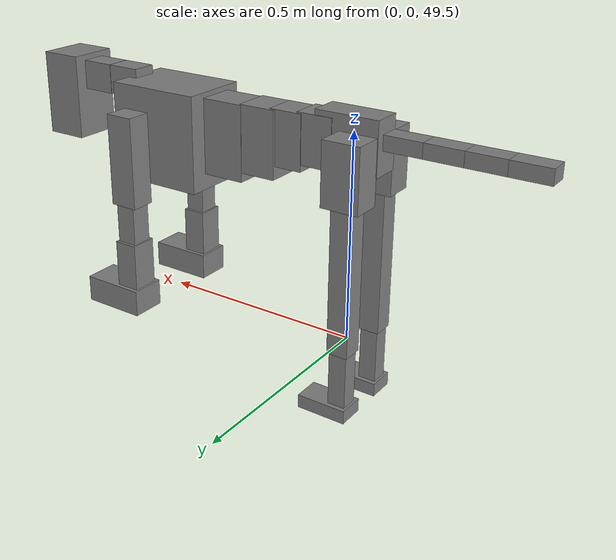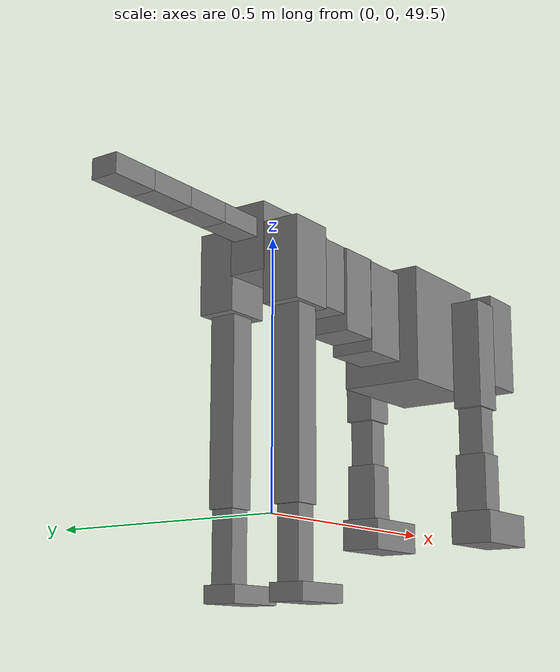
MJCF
<mujoco model="dog">

    <default>
        <joint armature="0.02" stiffness="1" damping="0.2" limited="true"/>
        <geom condim="3" friction="1 0.05 0.05" margin="0.01"/>
        <motor ctrllimited="true" ctrlrange="-1.0 1.0" forcelimited="true" gear="50"/>
    </default>

    <compiler inertiafromgeom="true" angle="radian"/>

    <option timestep="0.016" iterations="50" tolerance="1e-10" solver="Newton" jacobian="dense" cone="pyramidal"/>

    <size nconmax="20000" njmax="60000" nstack="5000000"/>
    <visual>
        <map force="0.1" zfar="30"/>
        <rgba haze="0.15 0.25 0.35 1"/>
        <quality shadowsize="2048"/>
        <global offwidth="800" offheight="800"/>
    </visual>

    <asset>
        <texture type="skybox" builtin="gradient" rgb1="0.3 0.5 0.7" rgb2="0 0 0" width="512" height="512"/>
        <texture name="texplane" type="2d" builtin="checker" rgb1=".2 .3 .4" rgb2=".1 0.15 0.2" width="512" height="512"
                 mark="cross" markrgb=".8 .8 .8"/>
        <texture name="texgeom" type="cube" builtin="flat" mark="cross" width="127" height="1278" rgb1="0.8 0.6 0.4"
                 rgb2="0.8 0.6 0.4" markrgb="1 1 1" random="0.01"/>

        <material name="matplane" reflectance="0.3" texture="texplane" texrepeat="1 1" texuniform="true"/>
        <material name="matgeom" texture="texgeom" texuniform="true" rgba="0.8 0.6 .4 1"/>
    </asset>

    <worldbody>
        <geom name="floor" pos="0 0 0" size="0 0 .25" type="plane" material="matplane" condim="3"/>

        <light directional="false" diffuse=".2 .2 .2" specular="0 0 0" pos="0 0 5" dir="0 0 -1" castshadow="false"/>
        <light mode="targetbodycom" target="torso" directional="false" diffuse=".8 .8 .8" specular="0.3 0.3 0.3"
               pos="0 0 4.0" dir="0 0 -1"/>

        <body name="root" pos="0 0 50">
            <freejoint name="root_1"/>
            <geom type="box" pos="0 0 -0.02" size="0.0774  0.0358  0.063" density="2030"/>

            <body name="spine1" pos="0.054 0 0">
                <joint name="spine1_y" axis="0 1 0" range="0 0.7" limited="true"/>
                <geom type="box" pos="0.02375 0 -0.03" size="0.04375  0.0375  0.05985" density="2030"/>

                <body name="spine2" pos="0.0612 0 0">
                    <joint name="spine2_y" axis="0 1 0" range="-0.15 0.15" limited="true"/>
                    <geom type="box" pos="0.03555  0  -0.04" size="0.04055  0.039  0.06615" density="2030"/>

                    <body name="spine3" pos="0.0730 0 0">
                        <joint name="spine3_y" axis="0 1 0" range="-0.15 0.15" limited="true"/>
                        <geom type="box" pos="0.03555  0  -0.057" size="0.04555  0.0445  0.081" density="2030"/>

                        <body name="spine4" pos="0.0780 0 0">
                            <joint name="spine4_y" axis="0 1 0" range="-0.15 0.15" limited="true"/>
                            <geom type="box" pos="0.05265  0  -0.07" size="0.05265  0.045  0.09135" density="2030"/>

                            <body name="torso" pos="0.1082 0 0">
                                <joint name="torso_y" axis="0 1 0" range="-0.15 0.15" limited="true"/>
                                <geom type="box" pos="0.11925  0  -0.085" size="0.11925  0.085  0.11745"
                                      density="2030"/>

                                <body name="neck1" pos="0.2160  0   0.0180">
                                    <joint name="neck1_y" axis="0 1 0" range="-1.2  -1" limited="true"/>
                                    <geom type="box" pos="0.0423  0  0" size="0.0423  0.03  0.036" density="2325"/>

                                    <body name="neck2" pos="0.0853  0  0">
                                        <joint name="neck2_y" axis="0 1 0" range="0.1  0" limited="true"/>
                                        <geom type="box" pos="0.0423  0  0" size="0.0423  0.03  0.036" density="2325"/>

                                        <body name="head" pos="0.0853  0  0">
                                            <joint name="head_y" axis="0 1 0" range="-0.3  -0.2" limited="true"/>
                                            <geom type="box" pos="0.0531  0  -0.055" size="0.0531  0.06  0.1044"
                                                  density="4030"/>

                                        </body>
                                    </body>
                                </body>

                                <body name="front_shoulder" pos="0.156  0   -0.0480">
                                    <joint name="front_shoulder_y" axis="0 1 0" range="-1 1.5" limited="true"/>
                                    <geom type="box" pos="0 0.13 -0.0849" size="0.0350  0.0299  0.1115" density="1158"/>
                                    <geom type="box" pos="0 -0.13 -0.0849" size="0.0350  0.0299  0.1115"
                                          density="1158"/>

                                    <body name="front_elbow" pos="0  0  -0.1698">
                                        <joint name="front_elbow_y" axis="0 1 0" range="-2 0" limited="true"/>
                                        <geom type="box" pos="0 0.13 -0.0679" size="0.0250  0.0256  0.0679"
                                              density="1081"/>
                                        <geom type="box" pos="0 -0.13 -0.0679" size="0.0250  0.0256  0.0679"
                                              density="1081"/>

                                        <body name="front_wrist" pos="0  0  -0.1357">
                                            <joint name="front_wrist_y" axis="0 1 0" range="-0.2 0" limited="true"/>
                                            <geom type="box" pos="0 0.13 -0.0587" size="0.0294  0.0326  0.0719"
                                                  density="1664"/>
                                            <geom type="box" pos="0 -0.13 -0.0587" size="0.0294  0.0326  0.0719"
                                                  density="1664"/>

                                            <body name="front_finger_end" pos="0  0  -0.1175">
                                                <joint name="front_finger_y" axis="0 1 0" range="-0.4 1"
                                                       limited="true"/>
                                                <geom type="box" pos="0.0428  0.13  -0.0175"
                                                      size="0.0784  0.0428  0.0325" density="1515"/>
                                                <geom type="box" pos="0.0428  -0.13  -0.0175"
                                                      size="0.0784  0.0428  0.0325" density="1515"/>

                                            </body>

                                        </body>
                                    </body>
                                </body>

                            </body>
                        </body>
                    </body>
                </body>
            </body>

            <body name="back_hip" pos="-0.03 0 -0.018">
                <joint name="back_hip_y" axis="0 1 0" range="-1.5 0.3" limited="true"/>
                <geom type="box" pos="0 0.07 -0.0523" size="0.0455  0.0357  0.0751" density="1154"/>
                <geom type="box" pos="0 -0.07 -0.0523" size="0.0455  0.0357  0.0751" density="1154"/>

                <body name="back_knee" pos="0  0  -0.1047">
                    <joint name="back_knee_y" axis="0 1 0" range="0 2.8" limited="true"/>
                    <geom type="box" pos="0 0.07 -0.1772" size="0.0258  0.0255  0.1927" density="1227"/>
                    <geom type="box" pos="0 -0.07 -0.1772" size="0.0258  0.0255  0.1927" density="1227"/>

                    <body name="back_ankle" pos="0  0  -0.3544">
                        <joint name="back_ankle_y" axis="0 1 0" range="-2.2 0" limited="true"/>
                        <geom type="box" pos="0 0.07 -0.0806" size="0.0216  0.0216  0.0919" density="1284"/>
                        <geom type="box" pos="0 -0.07 -0.0806" size="0.0216  0.0216  0.0919" density="1284"/>

                        <body name="back_toe_end" pos="0  0  -0.1612">
                            <joint name="back_toe_y" axis="0 1 0" range="-0.4 1" limited="true"/>
                            <geom type="box" pos="0.0333  0.07  -0.0012" size="0.0611  0.0333  0.0162" density="1515"/>
                            <geom type="box" pos="0.0333  -0.07  -0.0012" size="0.0611  0.0333  0.0162" density="1515"/>

                        </body>
                    </body>
                </body>
            </body>

            <body name="tail1" pos="-0.074 0 -0.006">
                <joint name="tail1_y" axis="0 1 0" range="-0.2 0.2" limited="true"/>
                <geom type="box" pos="-0.0536  0  0" size="0.045  0.025  0.0175" density="1587"/>

                <body name="tail2" pos="-0.09 0 0">
                    <joint name="tail2_y" axis="0 1 0" range="-0.2 0.2" limited="true"/>
                    <geom type="box" pos="-0.0536  0  0" size="0.045  0.025  0.0175" density="1587"/>

                    <body name="tail3" pos="-0.09 0 0">
                        <joint name="tail3_y" axis="0 1 0" range="-0.2 0.2" limited="true"/>
                        <geom type="box" pos="-0.0536  0  0" size="0.045  0.025  0.0175" density="1587"/>

                        <body name="tail4" pos="-0.09 0 0">
                            <joint name="tail4_y" axis="0 1 0" range="-0.2 0.2" limited="true"/>
                            <geom type="box" pos="-0.0536  0  0" size="0.045  0.025  0.0175" density="1587"/>

                        </body>
                    </body>
                </body>
            </body>
        </body>
    </worldbody>

    <actuator>
        <motor joint="spine1_y" forcerange="-150 150     "/>
        <motor joint="spine2_y" forcerange="-150 150     "/>
        <motor joint="spine3_y" forcerange="-150 150     "/>
        <motor joint="spine4_y" forcerange="-150 150     "/>
        <motor joint="torso_y" forcerange="-150 150     "/>
        <motor joint="neck1_y" forcerange="-100 100       "/>
        <motor joint="neck2_y" forcerange="-100 100       "/>
        <motor joint="head_y" forcerange="-150 150       "/>
        <motor joint="front_shoulder_y" forcerange="-189.64 109.79"/>
        <motor joint="front_elbow_y" forcerange="-135.85 150.02"/>
        <motor joint="front_wrist_y" forcerange="-123.53 137.62"/>
        <motor joint="front_finger_y" forcerange="-94.37 93.70"/>
        <motor joint="back_hip_y" forcerange="-366.33 309.33"/>
        <motor joint="back_knee_y" forcerange="-247.54 322.71"/>
        <motor joint="back_angle_y" forcerange="-139.04 106.71"/>
        <motor joint="back_toe_y" forcerange="-61.12 125.29"/>
        <motor joint="tail1_y" forcerange="-50 50     "/>
        <motor joint="tail2_y" forcerange="-50 50     "/>
        <motor joint="tail3_y" forcerange="-50 50     "/>
        <motor joint="tail4_y" forcerange="-50 50     "/>
    </actuator>
</mujoco>
